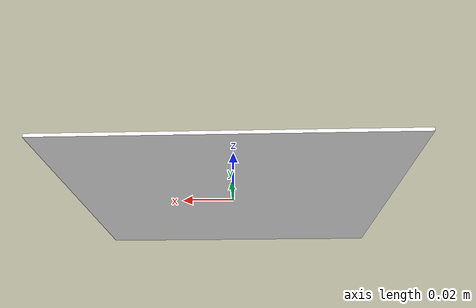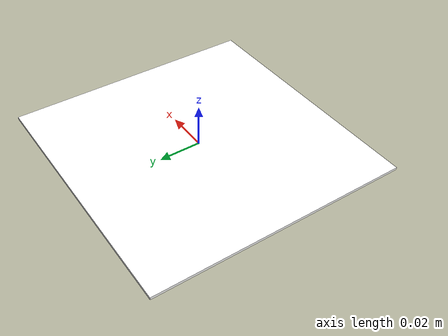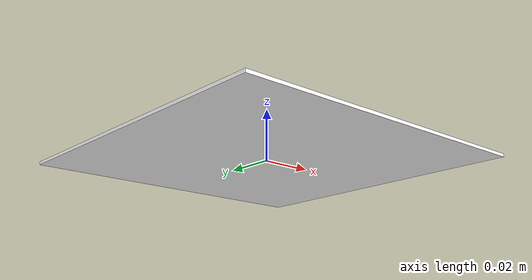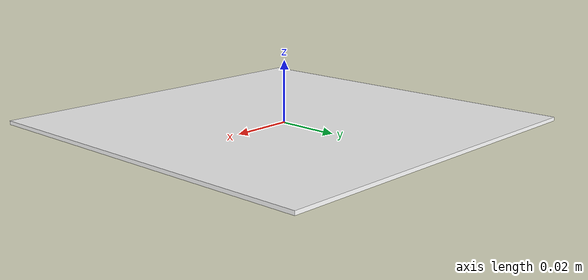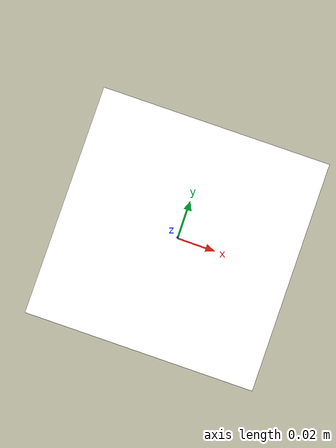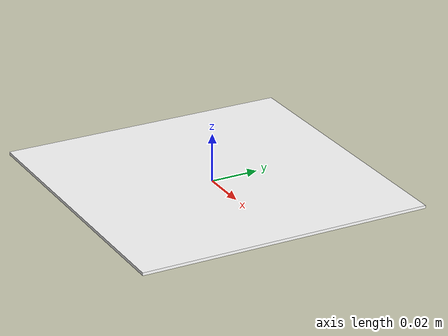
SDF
<?xml version='1.0'?>
<sdf version='1.6'>
  <model name='apriltag_c'>
    <link name='main'>
    <pose frame=''>0 0 0 0 0 0</pose>
      <visual name='main_at'>
        <geometry>
          <mesh>
            <scale>0.122 0.122 0.122</scale>
            <uri>model://apriltag_c/meshes/apriltag.dae</uri>
          </mesh>
        </geometry>
        <material>
          <diffuse>1.0 1.0 1.0</diffuse>
          <specular>1.0 1.0 1.0</specular>
          <pbr>
            <metal>
              <albedo_map>model://apriltag_c/meshes/tag36_11_00004.png</albedo_map>
            </metal>
          </pbr>
        </material>
      </visual>
     </link>
    <static>1</static>
  </model>
</sdf>
